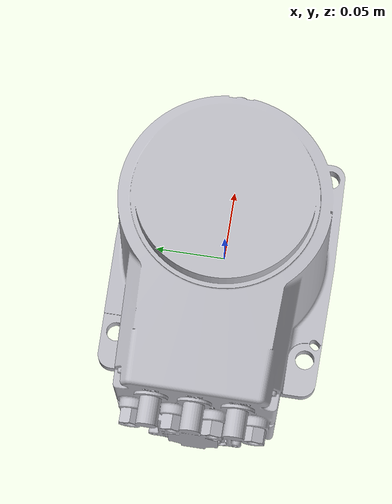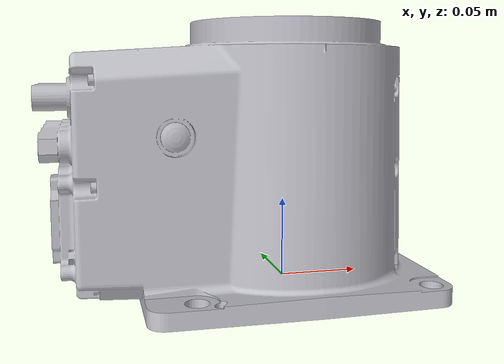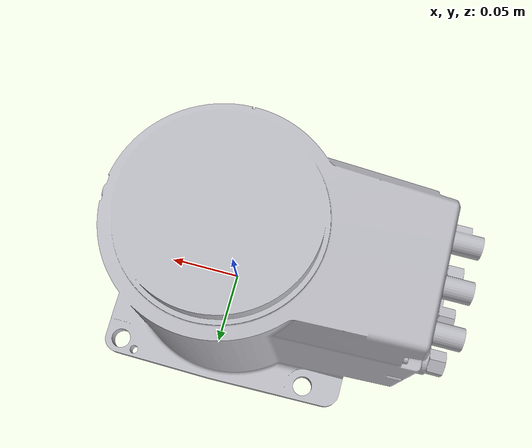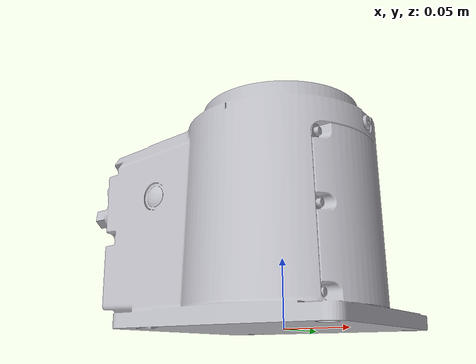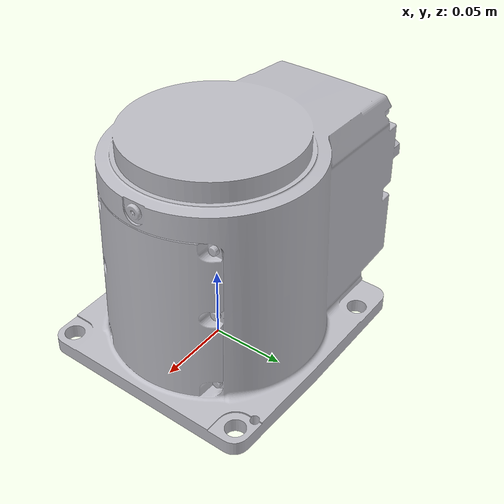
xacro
<?xml version="1.0" ?>
<robot name="IRB1100_4kg-475-STD" xmlns:xacro="http://www.ros.org/wiki/xacro">

<xacro:include filename="$(find IRB1100_4kg-475-STD_description)/urdf/materials.xacro" />
<xacro:include filename="$(find IRB1100_4kg-475-STD_description)/urdf/IRB1100_4kg-475-STD.trans" />
<xacro:include filename="$(find IRB1100_4kg-475-STD_description)/urdf/IRB1100_4kg-475-STD.gazebo" />
<link name="base_link">
  <inertial>
    <origin xyz="-0.02787704551344373 6.546822329330958e-06 0.07388271158666022" rpy="0 0 0"/>
    <mass value="27.85049450283746"/>
    <inertia ixx="0.08843" iyy="0.137195" izz="0.117326" ixy="2.6e-05" iyz="2e-06" ixz="-0.000602"/>
  </inertial>
  <visual>
    <origin xyz="0 0 0" rpy="0 0 0"/>
    <geometry>
      <mesh filename="package://IRB1100_4kg-475-STD_description/meshes/base_link.stl" scale="0.001 0.001 0.001"/>
    </geometry>
    <material name="silver"/>
  </visual>
  <collision>
    <origin xyz="0 0 0" rpy="0 0 0"/>
    <geometry>
      <mesh filename="package://IRB1100_4kg-475-STD_description/meshes/base_link.stl" scale="0.001 0.001 0.001"/>
    </geometry>
  </collision>
</link>

</robot>

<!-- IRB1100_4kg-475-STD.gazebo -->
<robot name="IRB1100_4kg-475-STD" xmlns:xacro="http://www.ros.org/wiki/xacro" >

<xacro:property name="body_color" value="Gazebo/Silver" />

<gazebo>
  <plugin name="control" filename="libgazebo_ros_control.so"/>
</gazebo>
<gazebo reference="base_link">
  <material>${body_color}</material>
  <mu1>0.2</mu1>
  <mu2>0.2</mu2>
  <selfCollide>true</selfCollide>
  <gravity>true</gravity>
</gazebo>

</robot>
